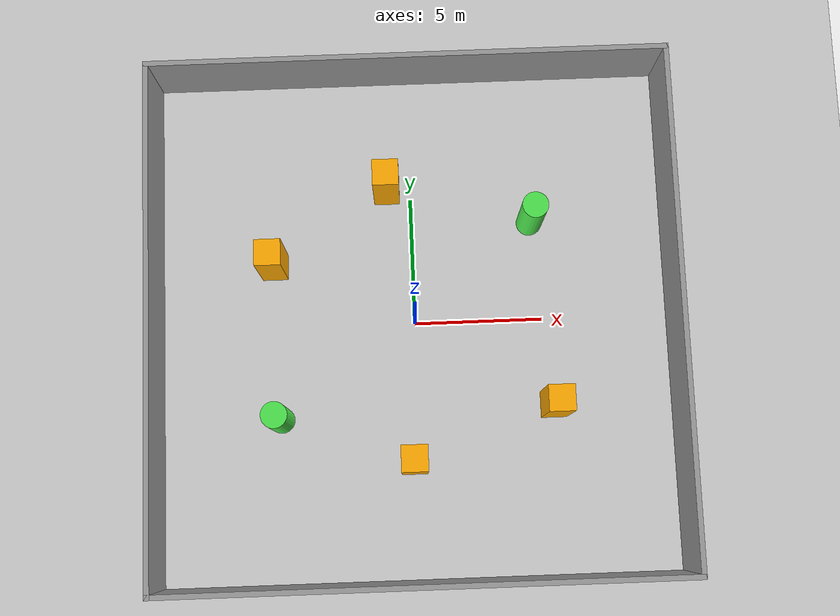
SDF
<sdf version="1.7">
 <world name="default">
  <light name="sun" type="directional">
   <pose>0 0 10 0 -0 0</pose>
   <diffuse>0.8 0.8 0.8 1</diffuse>
   <specular>0.2 0.2 0.2 1</specular>
   <attenuation>
    <range>1000</range>
    <constant>0.9</constant>
    <linear>0.01</linear>
    <quadratic>0.001</quadratic>
   </attenuation>
   <direction>-0.05 0.05 -0.99</direction>
   <spot><inner_angle>0</inner_angle><outer_angle>0</outer_angle><falloff>0</falloff></spot>
  </light>
  <model name="ground_plane">
   <static>1</static>
   <link name="link">
    <collision name="collision">
     <geometry><plane><normal>0 0 1</normal><size>100 100</size></plane></geometry>
     <surface>
      <contact><collide_bitmask>65535</collide_bitmask></contact>
      <friction><ode><mu>100</mu><mu2>50</mu2></ode></friction>
     </surface>
    </collision>
    <visual name="visual">
     <cast_shadows>0</cast_shadows>
     <geometry><plane><normal>0 0 1</normal><size>100 100</size></plane></geometry>
     <material>
      <script><uri>file://media/materials/scripts/gazebo.material</uri><name>Gazebo/Grey</name></script>
     </material>
    </visual>
   </link>
  </model>
  <gravity>0 0 -9.8</gravity>
  <magnetic_field>6e-06 2.3e-05 -4.2e-05</magnetic_field>
  <atmosphere type="adiabatic"/>
  <physics type="ode">
   <max_step_size>0.001</max_step_size>
   <real_time_factor>1</real_time_factor>
   <real_time_update_rate>1000</real_time_update_rate>
  </physics>
  <scene><ambient>0.4 0.4 0.4 1</ambient><background>0.7 0.7 0.7 1</background><shadows>1</shadows></scene>
  <spherical_coordinates>
   <surface_model>EARTH_WGS84</surface_model>
   <latitude_deg>0</latitude_deg>
   <longitude_deg>0</longitude_deg>
   <elevation>0</elevation>
   <heading_deg>0</heading_deg>
  </spherical_coordinates>
  <model name="Fence20">
   <link name="Wall_12">
    <collision name="Wall_12_Collision">
     <geometry><box><size>20.2 0.2 3</size></box></geometry>
     <pose>0 0 1.5 0 -0 0</pose>
    </collision>
    <visual name="Wall_12_Visual">
     <pose>0 0 1.5 0 -0 0</pose>
     <geometry><box><size>20.2 0.2 3</size></box></geometry>
     <material>
      <script><uri>file://media/materials/scripts/gazebo.material</uri><name>Gazebo/Grey</name></script>
      <ambient>1 1 1 1</ambient>
     </material>
     <meta><layer>0</layer></meta>
    </visual>
    <pose>-10 0 0 0 -0 -1.5708</pose>
   </link>
   <link name="Wall_13">
    <collision name="Wall_13_Collision">
     <geometry><box><size>20.2 0.2 3</size></box></geometry>
     <pose>0 0 1.5 0 -0 0</pose>
    </collision>
    <visual name="Wall_13_Visual">
     <pose>0 0 1.5 0 -0 0</pose>
     <geometry><box><size>20.2 0.2 3</size></box></geometry>
     <material>
      <script><uri>file://media/materials/scripts/gazebo.material</uri><name>Gazebo/Grey</name></script>
      <ambient>1 1 1 1</ambient>
     </material>
     <meta><layer>0</layer></meta>
    </visual>
    <pose>0 -10 0 0 -0 0</pose>
   </link>
   <link name="Wall_14">
    <collision name="Wall_14_Collision">
     <geometry><box><size>20.2 0.2 3</size></box></geometry>
     <pose>0 0 1.5 0 -0 0</pose>
    </collision>
    <visual name="Wall_14_Visual">
     <pose>0 0 1.5 0 -0 0</pose>
     <geometry><box><size>20.2 0.2 3</size></box></geometry>
     <material>
      <script><uri>file://media/materials/scripts/gazebo.material</uri><name>Gazebo/Grey</name></script>
      <ambient>1 1 1 1</ambient>
     </material>
     <meta><layer>0</layer></meta>
    </visual>
    <pose>10 0 0 0 -0 1.5708</pose>
   </link>
   <link name="Wall_15">
    <collision name="Wall_15_Collision">
     <geometry><box><size>20.2 0.2 3</size></box></geometry>
     <pose>0 0 1.5 0 -0 0</pose>
    </collision>
    <visual name="Wall_15_Visual">
     <pose>0 0 1.5 0 -0 0</pose>
     <geometry><box><size>20.2 0.2 3</size></box></geometry>
     <material>
      <script><uri>file://media/materials/scripts/gazebo.material</uri><name>Gazebo/Grey</name></script>
      <ambient>1 1 1 1</ambient>
     </material>
     <meta><layer>0</layer></meta>
    </visual>
    <pose>0 10 0 0 -0 3.14159</pose>
   </link>
   <static>1</static>
  </model>
  <model name="Pillar_1x3">
   <link name="link_0">
    <inertial>
     <mass>1</mass>
     <inertia><ixx>0.145833</ixx><ixy>0</ixy><ixz>0</ixz><iyy>0.145833</iyy><iyz>0</iyz><izz>0.125</izz></inertia>
    </inertial>
    <pose>0 0 1.5 0 -0 0</pose>
    <kinematic>1</kinematic>
    <visual name="visual">
     <geometry><cylinder><radius>0.5</radius><length>3</length></cylinder></geometry>
     <material>
      <lighting>1</lighting>
      <script><uri>file://media/materials/scripts/gazebo.material</uri><name>Gazebo/Grey</name></script>
      <shader type="pixel"><normal_map>__default__</normal_map></shader>
      <ambient>0.3 0.9 0.3 1</ambient>
      <diffuse>0.7 0.7 0.7 1</diffuse>
      <specular>0.01 0.01 0.01 1</specular>
      <emissive>0 0 0 1</emissive>
     </material>
    </visual>
    <collision name="collision">
     <geometry><cylinder><radius>0.5</radius><length>3</length></cylinder></geometry>
     <surface>
      <friction>
       <ode><mu>1</mu><mu2>1</mu2><fdir1>0 0 0</fdir1><slip1>0</slip1><slip2>0</slip2></ode>
       <torsional>
        <coefficient>1</coefficient>
        <patch_radius>0</patch_radius>
        <surface_radius>0</surface_radius>
        <use_patch_radius>1</use_patch_radius>
        <ode><slip>0</slip></ode>
       </torsional>
      </friction>
      <bounce><restitution_coefficient>0</restitution_coefficient><threshold>1e+06</threshold></bounce>
      <contact>
       <collide_without_contact>0</collide_without_contact>
       <collide_without_contact_bitmask>1</collide_without_contact_bitmask>
       <collide_bitmask>1</collide_bitmask>
       <ode>
        <soft_cfm>0</soft_cfm>
        <soft_erp>0.2</soft_erp>
        <kp>1e+13</kp>
        <kd>1</kd>
        <max_vel>0.01</max_vel>
        <min_depth>0</min_depth>
       </ode>
       <bullet>
        <split_impulse>1</split_impulse>
        <split_impulse_penetration_threshold>-0.01</split_impulse_penetration_threshold>
        <soft_cfm>0</soft_cfm>
        <soft_erp>0.2</soft_erp>
        <kp>1e+13</kp>
        <kd>1</kd>
       </bullet>
      </contact>
     </surface>
    </collision>
   </link>
   <static>0</static>
   <pose>-5.32392 -3.63052 0 0 -0 0</pose>
  </model>
  <model name="Pillar_1x3_clone">
   <link name="link_0">
    <inertial>
     <mass>1</mass>
     <inertia><ixx>0.145833</ixx><ixy>0</ixy><ixz>0</ixz><iyy>0.145833</iyy><iyz>0</iyz><izz>0.125</izz></inertia>
    </inertial>
    <pose>0 0 1.5 0 -0 0</pose>
    <kinematic>1</kinematic>
    <visual name="visual">
     <geometry><cylinder><radius>0.5</radius><length>3</length></cylinder></geometry>
     <material>
      <lighting>1</lighting>
      <script><uri>file://media/materials/scripts/gazebo.material</uri><name>Gazebo/Grey</name></script>
      <shader type="pixel"><normal_map>__default__</normal_map></shader>
      <ambient>0.3 0.9 0.3 1</ambient>
      <diffuse>0.7 0.7 0.7 1</diffuse>
      <specular>0.01 0.01 0.01 1</specular>
      <emissive>0 0 0 1</emissive>
     </material>
    </visual>
    <collision name="collision">
     <geometry><cylinder><radius>0.5</radius><length>3</length></cylinder></geometry>
     <surface>
      <friction>
       <ode><mu>1</mu><mu2>1</mu2><fdir1>0 0 0</fdir1><slip1>0</slip1><slip2>0</slip2></ode>
       <torsional>
        <coefficient>1</coefficient>
        <patch_radius>0</patch_radius>
        <surface_radius>0</surface_radius>
        <use_patch_radius>1</use_patch_radius>
        <ode><slip>0</slip></ode>
       </torsional>
      </friction>
      <bounce><restitution_coefficient>0</restitution_coefficient><threshold>1e+06</threshold></bounce>
      <contact>
       <collide_without_contact>0</collide_without_contact>
       <collide_without_contact_bitmask>1</collide_without_contact_bitmask>
       <collide_bitmask>1</collide_bitmask>
       <ode>
        <soft_cfm>0</soft_cfm>
        <soft_erp>0.2</soft_erp>
        <kp>1e+13</kp>
        <kd>1</kd>
        <max_vel>0.01</max_vel>
        <min_depth>0</min_depth>
       </ode>
       <bullet>
        <split_impulse>1</split_impulse>
        <split_impulse_penetration_threshold>-0.01</split_impulse_penetration_threshold>
        <soft_cfm>0</soft_cfm>
        <soft_erp>0.2</soft_erp>
        <kp>1e+13</kp>
        <kd>1</kd>
       </bullet>
      </contact>
     </surface>
    </collision>
   </link>
   <static>0</static>
   <pose>4.67826 3.90982 0 0 -0 0</pose>
  </model>
  <model name="Box1x1x3">
   <link name="link_0">
    <inertial>
     <mass>1</mass>
     <inertia>
      <ixx>0.166667</ixx>
      <ixy>0</ixy>
      <ixz>0</ixz>
      <iyy>0.166667</iyy>
      <iyz>0</iyz>
      <izz>0.166667</izz>
     </inertia>
    </inertial>
    <pose>0 0 1.5 0 -0 0</pose>
    <kinematic>1</kinematic>
    <visual name="visual">
     <geometry><box><size>1 1 3</size></box></geometry>
     <material>
      <lighting>1</lighting>
      <script><uri>file://media/materials/scripts/gazebo.material</uri><name>Gazebo/Grey</name></script>
      <shader type="pixel"><normal_map>__default__</normal_map></shader>
      <ambient>1 0.667 0 1</ambient>
      <diffuse>0.7 0.7 0.7 1</diffuse>
      <specular>0.01 0.01 0.01 1</specular>
      <emissive>0 0 0 1</emissive>
     </material>
    </visual>
    <collision name="collision">
     <geometry><box><size>1 1 3</size></box></geometry>
     <surface>
      <friction>
       <ode><mu>1</mu><mu2>1</mu2><fdir1>0 0 0</fdir1><slip1>0</slip1><slip2>0</slip2></ode>
       <torsional>
        <coefficient>1</coefficient>
        <patch_radius>0</patch_radius>
        <surface_radius>0</surface_radius>
        <use_patch_radius>1</use_patch_radius>
        <ode><slip>0</slip></ode>
       </torsional>
      </friction>
      <bounce><restitution_coefficient>0</restitution_coefficient><threshold>1e+06</threshold></bounce>
      <contact>
       <collide_without_contact>0</collide_without_contact>
       <collide_without_contact_bitmask>1</collide_without_contact_bitmask>
       <collide_bitmask>1</collide_bitmask>
       <ode>
        <soft_cfm>0</soft_cfm>
        <soft_erp>0.2</soft_erp>
        <kp>1e+13</kp>
        <kd>1</kd>
        <max_vel>0.01</max_vel>
        <min_depth>0</min_depth>
       </ode>
       <bullet>
        <split_impulse>1</split_impulse>
        <split_impulse_penetration_threshold>-0.01</split_impulse_penetration_threshold>
        <soft_cfm>0</soft_cfm>
        <soft_erp>0.2</soft_erp>
        <kp>1e+13</kp>
        <kd>1</kd>
       </bullet>
      </contact>
     </surface>
    </collision>
   </link>
   <static>0</static>
   <pose>-5.46748 2.45953 0 0 -0 0</pose>
  </model>
  <model name="Box1x1x3_clone">
   <link name="link_0">
    <inertial>
     <mass>1</mass>
     <inertia>
      <ixx>0.166667</ixx>
      <ixy>0</ixy>
      <ixz>0</ixz>
      <iyy>0.166667</iyy>
      <iyz>0</iyz>
      <izz>0.166667</izz>
     </inertia>
    </inertial>
    <pose>0 0 1.5 0 -0 0</pose>
    <kinematic>1</kinematic>
    <visual name="visual">
     <geometry><box><size>1 1 3</size></box></geometry>
     <material>
      <lighting>1</lighting>
      <script><uri>file://media/materials/scripts/gazebo.material</uri><name>Gazebo/Grey</name></script>
      <shader type="pixel"><normal_map>__default__</normal_map></shader>
      <ambient>1 0.667 0 1</ambient>
      <diffuse>0.7 0.7 0.7 1</diffuse>
      <specular>0.01 0.01 0.01 1</specular>
      <emissive>0 0 0 1</emissive>
     </material>
    </visual>
    <collision name="collision">
     <geometry><box><size>1 1 3</size></box></geometry>
     <surface>
      <friction>
       <ode><mu>1</mu><mu2>1</mu2><fdir1>0 0 0</fdir1><slip1>0</slip1><slip2>0</slip2></ode>
       <torsional>
        <coefficient>1</coefficient>
        <patch_radius>0</patch_radius>
        <surface_radius>0</surface_radius>
        <use_patch_radius>1</use_patch_radius>
        <ode><slip>0</slip></ode>
       </torsional>
      </friction>
      <bounce><restitution_coefficient>0</restitution_coefficient><threshold>1e+06</threshold></bounce>
      <contact>
       <collide_without_contact>0</collide_without_contact>
       <collide_without_contact_bitmask>1</collide_without_contact_bitmask>
       <collide_bitmask>1</collide_bitmask>
       <ode>
        <soft_cfm>0</soft_cfm>
        <soft_erp>0.2</soft_erp>
        <kp>1e+13</kp>
        <kd>1</kd>
        <max_vel>0.01</max_vel>
        <min_depth>0</min_depth>
       </ode>
       <bullet>
        <split_impulse>1</split_impulse>
        <split_impulse_penetration_threshold>-0.01</split_impulse_penetration_threshold>
        <soft_cfm>0</soft_cfm>
        <soft_erp>0.2</soft_erp>
        <kp>1e+13</kp>
        <kd>1</kd>
       </bullet>
      </contact>
     </surface>
    </collision>
   </link>
   <static>0</static>
   <pose>5.27654 -3.38174 0 0 -0 0</pose>
  </model>
  <model name="Box1x1x3_clone_0">
   <link name="link_0">
    <inertial>
     <mass>1</mass>
     <inertia>
      <ixx>0.166667</ixx>
      <ixy>0</ixy>
      <ixz>0</ixz>
      <iyy>0.166667</iyy>
      <iyz>0</iyz>
      <izz>0.166667</izz>
     </inertia>
    </inertial>
    <pose>0 0 1.5 0 -0 0</pose>
    <kinematic>1</kinematic>
    <visual name="visual">
     <geometry><box><size>1 1 3</size></box></geometry>
     <material>
      <lighting>1</lighting>
      <script><uri>file://media/materials/scripts/gazebo.material</uri><name>Gazebo/Grey</name></script>
      <shader type="pixel"><normal_map>__default__</normal_map></shader>
      <ambient>1 0.667 0 1</ambient>
      <diffuse>0.7 0.7 0.7 1</diffuse>
      <specular>0.01 0.01 0.01 1</specular>
      <emissive>0 0 0 1</emissive>
     </material>
    </visual>
    <collision name="collision">
     <geometry><box><size>1 1 3</size></box></geometry>
     <surface>
      <friction>
       <ode><mu>1</mu><mu2>1</mu2><fdir1>0 0 0</fdir1><slip1>0</slip1><slip2>0</slip2></ode>
       <torsional>
        <coefficient>1</coefficient>
        <patch_radius>0</patch_radius>
        <surface_radius>0</surface_radius>
        <use_patch_radius>1</use_patch_radius>
        <ode><slip>0</slip></ode>
       </torsional>
      </friction>
      <bounce><restitution_coefficient>0</restitution_coefficient><threshold>1e+06</threshold></bounce>
      <contact>
       <collide_without_contact>0</collide_without_contact>
       <collide_without_contact_bitmask>1</collide_without_contact_bitmask>
       <collide_bitmask>1</collide_bitmask>
       <ode>
        <soft_cfm>0</soft_cfm>
        <soft_erp>0.2</soft_erp>
        <kp>1e+13</kp>
        <kd>1</kd>
        <max_vel>0.01</max_vel>
        <min_depth>0</min_depth>
       </ode>
       <bullet>
        <split_impulse>1</split_impulse>
        <split_impulse_penetration_threshold>-0.01</split_impulse_penetration_threshold>
        <soft_cfm>0</soft_cfm>
        <soft_erp>0.2</soft_erp>
        <kp>1e+13</kp>
        <kd>1</kd>
       </bullet>
      </contact>
     </surface>
    </collision>
   </link>
   <static>0</static>
   <pose>-0.949788 5.38866 0 0 -0 0</pose>
  </model>
  <model name="Box1x1x3_clone_1">
   <link name="link_0">
    <inertial>
     <mass>1</mass>
     <inertia>
      <ixx>0.166667</ixx>
      <ixy>0</ixy>
      <ixz>0</ixz>
      <iyy>0.166667</iyy>
      <iyz>0</iyz>
      <izz>0.166667</izz>
     </inertia>
    </inertial>
    <pose>0 0 1.5 0 -0 0</pose>
    <kinematic>1</kinematic>
    <visual name="visual">
     <geometry><box><size>1 1 3</size></box></geometry>
     <material>
      <lighting>1</lighting>
      <script><uri>file://media/materials/scripts/gazebo.material</uri><name>Gazebo/Grey</name></script>
      <shader type="pixel"><normal_map>__default__</normal_map></shader>
      <ambient>1 0.667 0 1</ambient>
      <diffuse>0.7 0.7 0.7 1</diffuse>
      <specular>0.01 0.01 0.01 1</specular>
      <emissive>0 0 0 1</emissive>
     </material>
    </visual>
    <collision name="collision">
     <geometry><box><size>1 1 3</size></box></geometry>
     <surface>
      <friction>
       <ode><mu>1</mu><mu2>1</mu2><fdir1>0 0 0</fdir1><slip1>0</slip1><slip2>0</slip2></ode>
       <torsional>
        <coefficient>1</coefficient>
        <patch_radius>0</patch_radius>
        <surface_radius>0</surface_radius>
        <use_patch_radius>1</use_patch_radius>
        <ode><slip>0</slip></ode>
       </torsional>
      </friction>
      <bounce><restitution_coefficient>0</restitution_coefficient><threshold>1e+06</threshold></bounce>
      <contact>
       <collide_without_contact>0</collide_without_contact>
       <collide_without_contact_bitmask>1</collide_without_contact_bitmask>
       <collide_bitmask>1</collide_bitmask>
       <ode>
        <soft_cfm>0</soft_cfm>
        <soft_erp>0.2</soft_erp>
        <kp>1e+13</kp>
        <kd>1</kd>
        <max_vel>0.01</max_vel>
        <min_depth>0</min_depth>
       </ode>
       <bullet>
        <split_impulse>1</split_impulse>
        <split_impulse_penetration_threshold>-0.01</split_impulse_penetration_threshold>
        <soft_cfm>0</soft_cfm>
        <soft_erp>0.2</soft_erp>
        <kp>1e+13</kp>
        <kd>1</kd>
       </bullet>
      </contact>
     </surface>
    </collision>
   </link>
   <static>0</static>
   <pose>-0.220283 -5.39675 1e-06 0 -0 0</pose>
  </model>
 </world>
</sdf>
